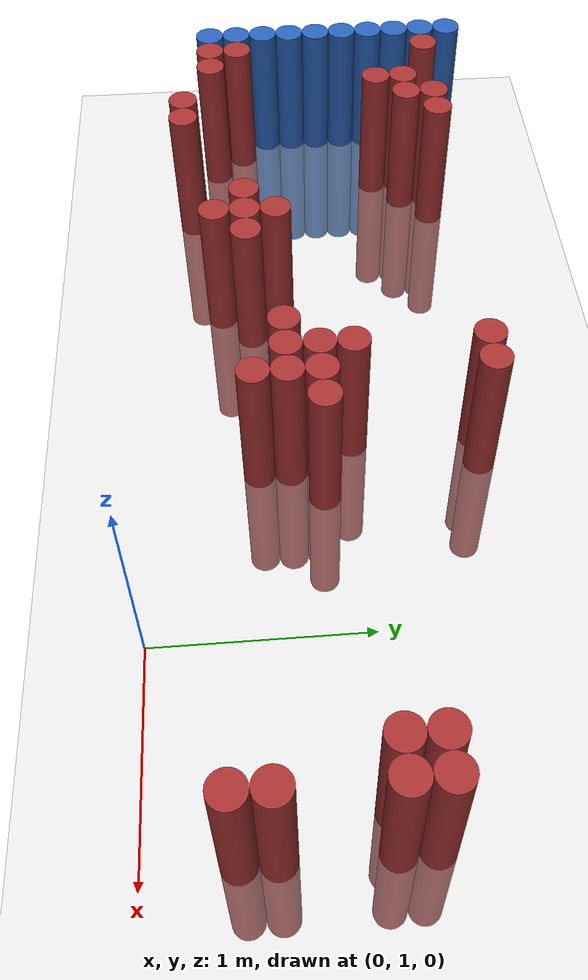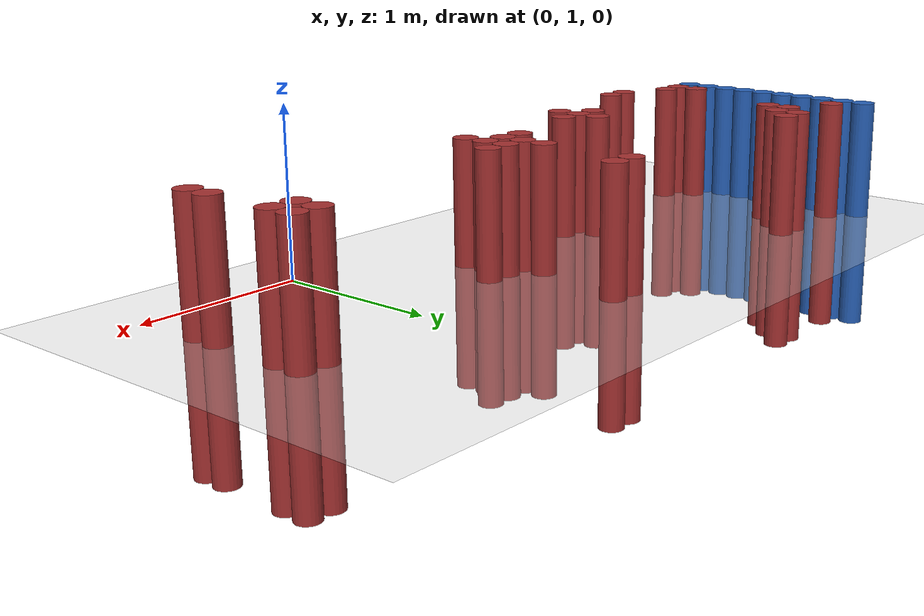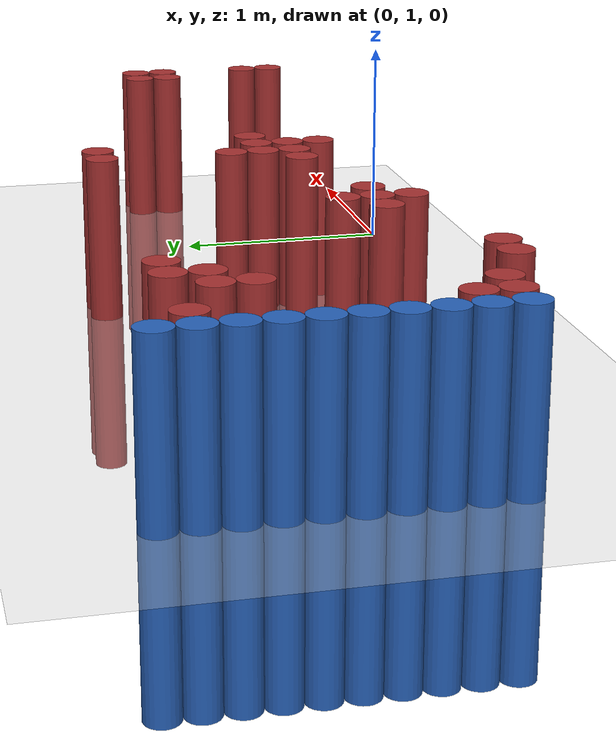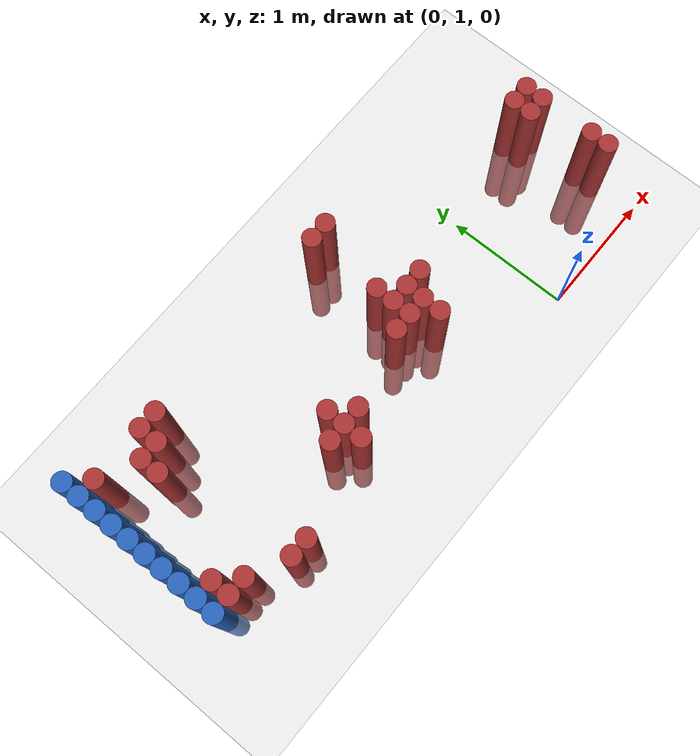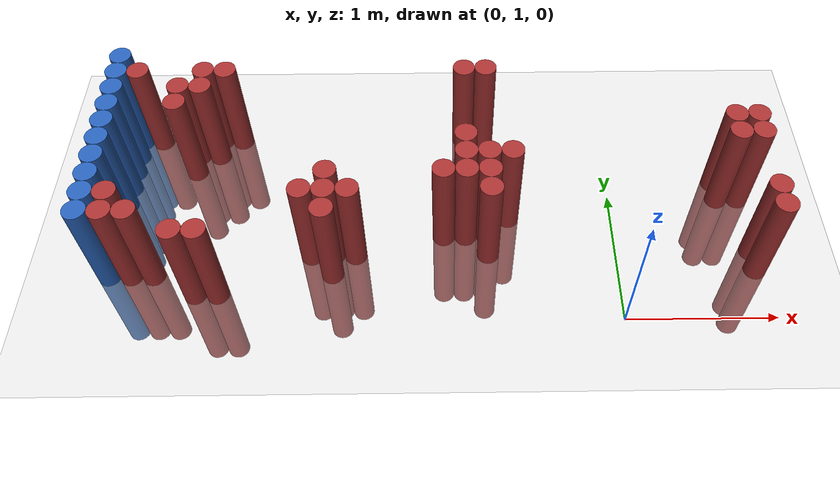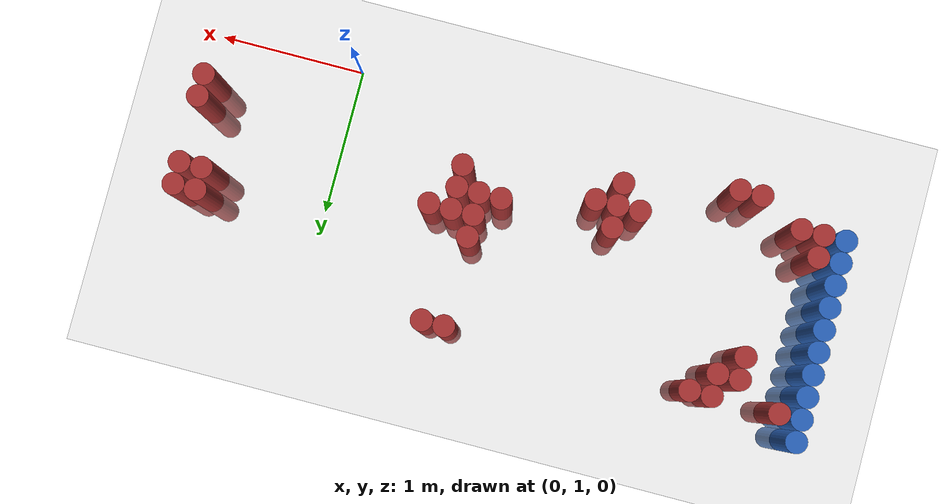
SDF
<sdf version="1.6">
 <world name="default">
  <model name="ground_plane">
   <static>1</static>
   <link name="link">
    <collision name="collision">
     <geometry><plane><normal>0 0 1</normal><size>100 100</size></plane></geometry>
     <surface><friction><ode><mu>100</mu><mu2>50</mu2></ode></friction></surface>
    </collision>
    <visual name="visual">
     <cast_shadows>0</cast_shadows>
     <geometry><plane><normal>0 0 1</normal><size>100 100</size></plane></geometry>
     <material>
      <script><uri>file://media/materials/scripts/gazebo.material</uri><name>Gazebo/Grey</name></script>
     </material>
    </visual>
   </link>
  </model>
  <model name="unit_cylinder_133">
   <static>1</static>
   <pose>-3.425000 1.375000 0.000000 0.000000 0.000000 0.000000</pose>
   <link name="link">
    <inertial>
     <mass>1</mass>
     <inertia><ixx>0.145833</ixx><ixy>0</ixy><ixz>0</ixz><iyy>0.145833</iyy><iyz>0</iyz><izz>0.125</izz></inertia>
    </inertial>
    <collision name="collision">
     <geometry><cylinder><radius>0.075000</radius><length>1.5</length></cylinder></geometry>
    </collision>
    <visual name="visual">
     <geometry><cylinder><radius>0.075000</radius><length>1.5</length></cylinder></geometry>
     <material>
      <ambient>0.152000 0.379000 0.720000 1</ambient>
      <diffuse>0.152000 0.379000 0.720000 1</diffuse>
     </material>
     <material>
      <script><name>Gazebo/Grey</name><uri>file://media/materials/scripts/gazebo.material</uri></script>
     </material>
    </visual>
   </link>
  </model>
  <model name="unit_cylinder_135">
   <static>1</static>
   <pose>-3.425000 1.525000 0.000000 0.000000 0.000000 0.000000</pose>
   <link name="link">
    <inertial>
     <mass>1</mass>
     <inertia><ixx>0.145833</ixx><ixy>0</ixy><ixz>0</ixz><iyy>0.145833</iyy><iyz>0</iyz><izz>0.125</izz></inertia>
    </inertial>
    <collision name="collision">
     <geometry><cylinder><radius>0.075000</radius><length>1.5</length></cylinder></geometry>
    </collision>
    <visual name="visual">
     <geometry><cylinder><radius>0.075000</radius><length>1.5</length></cylinder></geometry>
     <material>
      <ambient>0.152000 0.379000 0.720000 1</ambient>
      <diffuse>0.152000 0.379000 0.720000 1</diffuse>
     </material>
     <material>
      <script><name>Gazebo/Grey</name><uri>file://media/materials/scripts/gazebo.material</uri></script>
     </material>
    </visual>
   </link>
  </model>
  <model name="unit_cylinder_137">
   <static>1</static>
   <pose>-3.425000 1.675000 0.000000 0.000000 0.000000 0.000000</pose>
   <link name="link">
    <inertial>
     <mass>1</mass>
     <inertia><ixx>0.145833</ixx><ixy>0</ixy><ixz>0</ixz><iyy>0.145833</iyy><iyz>0</iyz><izz>0.125</izz></inertia>
    </inertial>
    <collision name="collision">
     <geometry><cylinder><radius>0.075000</radius><length>1.5</length></cylinder></geometry>
    </collision>
    <visual name="visual">
     <geometry><cylinder><radius>0.075000</radius><length>1.5</length></cylinder></geometry>
     <material>
      <ambient>0.152000 0.379000 0.720000 1</ambient>
      <diffuse>0.152000 0.379000 0.720000 1</diffuse>
     </material>
     <material>
      <script><name>Gazebo/Grey</name><uri>file://media/materials/scripts/gazebo.material</uri></script>
     </material>
    </visual>
   </link>
  </model>
  <model name="unit_cylinder_139">
   <static>1</static>
   <pose>-3.425000 1.825000 0.000000 0.000000 0.000000 0.000000</pose>
   <link name="link">
    <inertial>
     <mass>1</mass>
     <inertia><ixx>0.145833</ixx><ixy>0</ixy><ixz>0</ixz><iyy>0.145833</iyy><iyz>0</iyz><izz>0.125</izz></inertia>
    </inertial>
    <collision name="collision">
     <geometry><cylinder><radius>0.075000</radius><length>1.5</length></cylinder></geometry>
    </collision>
    <visual name="visual">
     <geometry><cylinder><radius>0.075000</radius><length>1.5</length></cylinder></geometry>
     <material>
      <ambient>0.152000 0.379000 0.720000 1</ambient>
      <diffuse>0.152000 0.379000 0.720000 1</diffuse>
     </material>
     <material>
      <script><name>Gazebo/Grey</name><uri>file://media/materials/scripts/gazebo.material</uri></script>
     </material>
    </visual>
   </link>
  </model>
  <model name="unit_cylinder_141">
   <static>1</static>
   <pose>-3.425000 1.975000 0.000000 0.000000 0.000000 0.000000</pose>
   <link name="link">
    <inertial>
     <mass>1</mass>
     <inertia><ixx>0.145833</ixx><ixy>0</ixy><ixz>0</ixz><iyy>0.145833</iyy><iyz>0</iyz><izz>0.125</izz></inertia>
    </inertial>
    <collision name="collision">
     <geometry><cylinder><radius>0.075000</radius><length>1.5</length></cylinder></geometry>
    </collision>
    <visual name="visual">
     <geometry><cylinder><radius>0.075000</radius><length>1.5</length></cylinder></geometry>
     <material>
      <ambient>0.152000 0.379000 0.720000 1</ambient>
      <diffuse>0.152000 0.379000 0.720000 1</diffuse>
     </material>
     <material>
      <script><name>Gazebo/Grey</name><uri>file://media/materials/scripts/gazebo.material</uri></script>
     </material>
    </visual>
   </link>
  </model>
  <model name="unit_cylinder_143">
   <static>1</static>
   <pose>-3.425000 2.125000 0.000000 0.000000 0.000000 0.000000</pose>
   <link name="link">
    <inertial>
     <mass>1</mass>
     <inertia><ixx>0.145833</ixx><ixy>0</ixy><ixz>0</ixz><iyy>0.145833</iyy><iyz>0</iyz><izz>0.125</izz></inertia>
    </inertial>
    <collision name="collision">
     <geometry><cylinder><radius>0.075000</radius><length>1.5</length></cylinder></geometry>
    </collision>
    <visual name="visual">
     <geometry><cylinder><radius>0.075000</radius><length>1.5</length></cylinder></geometry>
     <material>
      <ambient>0.152000 0.379000 0.720000 1</ambient>
      <diffuse>0.152000 0.379000 0.720000 1</diffuse>
     </material>
     <material>
      <script><name>Gazebo/Grey</name><uri>file://media/materials/scripts/gazebo.material</uri></script>
     </material>
    </visual>
   </link>
  </model>
  <model name="unit_cylinder_145">
   <static>1</static>
   <pose>-3.425000 2.275000 0.000000 0.000000 0.000000 0.000000</pose>
   <link name="link">
    <inertial>
     <mass>1</mass>
     <inertia><ixx>0.145833</ixx><ixy>0</ixy><ixz>0</ixz><iyy>0.145833</iyy><iyz>0</iyz><izz>0.125</izz></inertia>
    </inertial>
    <collision name="collision">
     <geometry><cylinder><radius>0.075000</radius><length>1.5</length></cylinder></geometry>
    </collision>
    <visual name="visual">
     <geometry><cylinder><radius>0.075000</radius><length>1.5</length></cylinder></geometry>
     <material>
      <ambient>0.152000 0.379000 0.720000 1</ambient>
      <diffuse>0.152000 0.379000 0.720000 1</diffuse>
     </material>
     <material>
      <script><name>Gazebo/Grey</name><uri>file://media/materials/scripts/gazebo.material</uri></script>
     </material>
    </visual>
   </link>
  </model>
  <model name="unit_cylinder_147">
   <static>1</static>
   <pose>-3.425000 2.425000 0.000000 0.000000 0.000000 0.000000</pose>
   <link name="link">
    <inertial>
     <mass>1</mass>
     <inertia><ixx>0.145833</ixx><ixy>0</ixy><ixz>0</ixz><iyy>0.145833</iyy><iyz>0</iyz><izz>0.125</izz></inertia>
    </inertial>
    <collision name="collision">
     <geometry><cylinder><radius>0.075000</radius><length>1.5</length></cylinder></geometry>
    </collision>
    <visual name="visual">
     <geometry><cylinder><radius>0.075000</radius><length>1.5</length></cylinder></geometry>
     <material>
      <ambient>0.152000 0.379000 0.720000 1</ambient>
      <diffuse>0.152000 0.379000 0.720000 1</diffuse>
     </material>
     <material>
      <script><name>Gazebo/Grey</name><uri>file://media/materials/scripts/gazebo.material</uri></script>
     </material>
    </visual>
   </link>
  </model>
  <model name="unit_cylinder_149">
   <static>1</static>
   <pose>-3.425000 2.575000 0.000000 0.000000 0.000000 0.000000</pose>
   <link name="link">
    <inertial>
     <mass>1</mass>
     <inertia><ixx>0.145833</ixx><ixy>0</ixy><ixz>0</ixz><iyy>0.145833</iyy><iyz>0</iyz><izz>0.125</izz></inertia>
    </inertial>
    <collision name="collision">
     <geometry><cylinder><radius>0.075000</radius><length>1.5</length></cylinder></geometry>
    </collision>
    <visual name="visual">
     <geometry><cylinder><radius>0.075000</radius><length>1.5</length></cylinder></geometry>
     <material>
      <ambient>0.152000 0.379000 0.720000 1</ambient>
      <diffuse>0.152000 0.379000 0.720000 1</diffuse>
     </material>
     <material>
      <script><name>Gazebo/Grey</name><uri>file://media/materials/scripts/gazebo.material</uri></script>
     </material>
    </visual>
   </link>
  </model>
  <model name="unit_cylinder_151">
   <static>1</static>
   <pose>-3.425000 2.725000 0.000000 0.000000 0.000000 0.000000</pose>
   <link name="link">
    <inertial>
     <mass>1</mass>
     <inertia><ixx>0.145833</ixx><ixy>0</ixy><ixz>0</ixz><iyy>0.145833</iyy><iyz>0</iyz><izz>0.125</izz></inertia>
    </inertial>
    <collision name="collision">
     <geometry><cylinder><radius>0.075000</radius><length>1.5</length></cylinder></geometry>
    </collision>
    <visual name="visual">
     <geometry><cylinder><radius>0.075000</radius><length>1.5</length></cylinder></geometry>
     <material>
      <ambient>0.152000 0.379000 0.720000 1</ambient>
      <diffuse>0.152000 0.379000 0.720000 1</diffuse>
     </material>
     <material>
      <script><name>Gazebo/Grey</name><uri>file://media/materials/scripts/gazebo.material</uri></script>
     </material>
    </visual>
   </link>
  </model>
  <model name="unit_cylinder_230">
   <static>1</static>
   <pose>-3.425000 1.375000 0.000000 0.000000 0.000000 0.000000</pose>
   <link name="link">
    <inertial>
     <mass>1</mass>
     <inertia><ixx>0.145833</ixx><ixy>0</ixy><ixz>0</ixz><iyy>0.145833</iyy><iyz>0</iyz><izz>0.125</izz></inertia>
    </inertial>
    <collision name="collision">
     <geometry><cylinder><radius>0.075000</radius><length>1.5</length></cylinder></geometry>
    </collision>
    <visual name="visual">
     <geometry><cylinder><radius>0.075000</radius><length>1.5</length></cylinder></geometry>
     <material>
      <ambient>0.152000 0.379000 0.720000 1</ambient>
      <diffuse>0.152000 0.379000 0.720000 1</diffuse>
     </material>
     <material>
      <script><name>Gazebo/Grey</name><uri>file://media/materials/scripts/gazebo.material</uri></script>
     </material>
    </visual>
   </link>
  </model>
  <model name="unit_cylinder_231">
   <static>1</static>
   <pose>-3.425000 1.525000 0.000000 0.000000 0.000000 0.000000</pose>
   <link name="link">
    <inertial>
     <mass>1</mass>
     <inertia><ixx>0.145833</ixx><ixy>0</ixy><ixz>0</ixz><iyy>0.145833</iyy><iyz>0</iyz><izz>0.125</izz></inertia>
    </inertial>
    <collision name="collision">
     <geometry><cylinder><radius>0.075000</radius><length>1.5</length></cylinder></geometry>
    </collision>
    <visual name="visual">
     <geometry><cylinder><radius>0.075000</radius><length>1.5</length></cylinder></geometry>
     <material>
      <ambient>0.152000 0.379000 0.720000 1</ambient>
      <diffuse>0.152000 0.379000 0.720000 1</diffuse>
     </material>
     <material>
      <script><name>Gazebo/Grey</name><uri>file://media/materials/scripts/gazebo.material</uri></script>
     </material>
    </visual>
   </link>
  </model>
  <model name="unit_cylinder_232">
   <static>1</static>
   <pose>-3.425000 1.675000 0.000000 0.000000 0.000000 0.000000</pose>
   <link name="link">
    <inertial>
     <mass>1</mass>
     <inertia><ixx>0.145833</ixx><ixy>0</ixy><ixz>0</ixz><iyy>0.145833</iyy><iyz>0</iyz><izz>0.125</izz></inertia>
    </inertial>
    <collision name="collision">
     <geometry><cylinder><radius>0.075000</radius><length>1.5</length></cylinder></geometry>
    </collision>
    <visual name="visual">
     <geometry><cylinder><radius>0.075000</radius><length>1.5</length></cylinder></geometry>
     <material>
      <ambient>0.152000 0.379000 0.720000 1</ambient>
      <diffuse>0.152000 0.379000 0.720000 1</diffuse>
     </material>
     <material>
      <script><name>Gazebo/Grey</name><uri>file://media/materials/scripts/gazebo.material</uri></script>
     </material>
    </visual>
   </link>
  </model>
  <model name="unit_cylinder_233">
   <static>1</static>
   <pose>-3.425000 1.825000 0.000000 0.000000 0.000000 0.000000</pose>
   <link name="link">
    <inertial>
     <mass>1</mass>
     <inertia><ixx>0.145833</ixx><ixy>0</ixy><ixz>0</ixz><iyy>0.145833</iyy><iyz>0</iyz><izz>0.125</izz></inertia>
    </inertial>
    <collision name="collision">
     <geometry><cylinder><radius>0.075000</radius><length>1.5</length></cylinder></geometry>
    </collision>
    <visual name="visual">
     <geometry><cylinder><radius>0.075000</radius><length>1.5</length></cylinder></geometry>
     <material>
      <ambient>0.152000 0.379000 0.720000 1</ambient>
      <diffuse>0.152000 0.379000 0.720000 1</diffuse>
     </material>
     <material>
      <script><name>Gazebo/Grey</name><uri>file://media/materials/scripts/gazebo.material</uri></script>
     </material>
    </visual>
   </link>
  </model>
  <model name="unit_cylinder_234">
   <static>1</static>
   <pose>-3.425000 1.975000 0.000000 0.000000 0.000000 0.000000</pose>
   <link name="link">
    <inertial>
     <mass>1</mass>
     <inertia><ixx>0.145833</ixx><ixy>0</ixy><ixz>0</ixz><iyy>0.145833</iyy><iyz>0</iyz><izz>0.125</izz></inertia>
    </inertial>
    <collision name="collision">
     <geometry><cylinder><radius>0.075000</radius><length>1.5</length></cylinder></geometry>
    </collision>
    <visual name="visual">
     <geometry><cylinder><radius>0.075000</radius><length>1.5</length></cylinder></geometry>
     <material>
      <ambient>0.152000 0.379000 0.720000 1</ambient>
      <diffuse>0.152000 0.379000 0.720000 1</diffuse>
     </material>
     <material>
      <script><name>Gazebo/Grey</name><uri>file://media/materials/scripts/gazebo.material</uri></script>
     </material>
    </visual>
   </link>
  </model>
  <model name="unit_cylinder_235">
   <static>1</static>
   <pose>-3.425000 2.125000 0.000000 0.000000 0.000000 0.000000</pose>
   <link name="link">
    <inertial>
     <mass>1</mass>
     <inertia><ixx>0.145833</ixx><ixy>0</ixy><ixz>0</ixz><iyy>0.145833</iyy><iyz>0</iyz><izz>0.125</izz></inertia>
    </inertial>
    <collision name="collision">
     <geometry><cylinder><radius>0.075000</radius><length>1.5</length></cylinder></geometry>
    </collision>
    <visual name="visual">
     <geometry><cylinder><radius>0.075000</radius><length>1.5</length></cylinder></geometry>
     <material>
      <ambient>0.152000 0.379000 0.720000 1</ambient>
      <diffuse>0.152000 0.379000 0.720000 1</diffuse>
     </material>
     <material>
      <script><name>Gazebo/Grey</name><uri>file://media/materials/scripts/gazebo.material</uri></script>
     </material>
    </visual>
   </link>
  </model>
  <model name="unit_cylinder_236">
   <static>1</static>
   <pose>-3.425000 2.275000 0.000000 0.000000 0.000000 0.000000</pose>
   <link name="link">
    <inertial>
     <mass>1</mass>
     <inertia><ixx>0.145833</ixx><ixy>0</ixy><ixz>0</ixz><iyy>0.145833</iyy><iyz>0</iyz><izz>0.125</izz></inertia>
    </inertial>
    <collision name="collision">
     <geometry><cylinder><radius>0.075000</radius><length>1.5</length></cylinder></geometry>
    </collision>
    <visual name="visual">
     <geometry><cylinder><radius>0.075000</radius><length>1.5</length></cylinder></geometry>
     <material>
      <ambient>0.152000 0.379000 0.720000 1</ambient>
      <diffuse>0.152000 0.379000 0.720000 1</diffuse>
     </material>
     <material>
      <script><name>Gazebo/Grey</name><uri>file://media/materials/scripts/gazebo.material</uri></script>
     </material>
    </visual>
   </link>
  </model>
  <model name="unit_cylinder_237">
   <static>1</static>
   <pose>-3.425000 2.425000 0.000000 0.000000 0.000000 0.000000</pose>
   <link name="link">
    <inertial>
     <mass>1</mass>
     <inertia><ixx>0.145833</ixx><ixy>0</ixy><ixz>0</ixz><iyy>0.145833</iyy><iyz>0</iyz><izz>0.125</izz></inertia>
    </inertial>
    <collision name="collision">
     <geometry><cylinder><radius>0.075000</radius><length>1.5</length></cylinder></geometry>
    </collision>
    <visual name="visual">
     <geometry><cylinder><radius>0.075000</radius><length>1.5</length></cylinder></geometry>
     <material>
      <ambient>0.152000 0.379000 0.720000 1</ambient>
      <diffuse>0.152000 0.379000 0.720000 1</diffuse>
     </material>
     <material>
      <script><name>Gazebo/Grey</name><uri>file://media/materials/scripts/gazebo.material</uri></script>
     </material>
    </visual>
   </link>
  </model>
  <model name="unit_cylinder_238">
   <static>1</static>
   <pose>-3.425000 2.575000 0.000000 0.000000 0.000000 0.000000</pose>
   <link name="link">
    <inertial>
     <mass>1</mass>
     <inertia><ixx>0.145833</ixx><ixy>0</ixy><ixz>0</ixz><iyy>0.145833</iyy><iyz>0</iyz><izz>0.125</izz></inertia>
    </inertial>
    <collision name="collision">
     <geometry><cylinder><radius>0.075000</radius><length>1.5</length></cylinder></geometry>
    </collision>
    <visual name="visual">
     <geometry><cylinder><radius>0.075000</radius><length>1.5</length></cylinder></geometry>
     <material>
      <ambient>0.152000 0.379000 0.720000 1</ambient>
      <diffuse>0.152000 0.379000 0.720000 1</diffuse>
     </material>
     <material>
      <script><name>Gazebo/Grey</name><uri>file://media/materials/scripts/gazebo.material</uri></script>
     </material>
    </visual>
   </link>
  </model>
  <model name="unit_cylinder_265">
   <static>1</static>
   <pose>-3.275000 1.375000 0.000000 0.000000 0.000000 0.000000</pose>
   <link name="link">
    <inertial>
     <mass>1</mass>
     <inertia><ixx>0.145833</ixx><ixy>0</ixy><ixz>0</ixz><iyy>0.145833</iyy><iyz>0</iyz><izz>0.125</izz></inertia>
    </inertial>
    <collision name="collision">
     <geometry><cylinder><radius>0.075000</radius><length>1.5</length></cylinder></geometry>
    </collision>
    <visual name="visual">
     <geometry><cylinder><radius>0.075000</radius><length>1.5</length></cylinder></geometry>
     <material>
      <ambient>0.648000 0.192000 0.192000 1</ambient>
      <diffuse>0.648000 0.192000 0.192000 1</diffuse>
     </material>
     <material>
      <script><name>Gazebo/Grey</name><uri>file://media/materials/scripts/gazebo.material</uri></script>
     </material>
    </visual>
   </link>
  </model>
  <model name="unit_cylinder_266">
   <static>1</static>
   <pose>-3.275000 1.525000 0.000000 0.000000 0.000000 0.000000</pose>
   <link name="link">
    <inertial>
     <mass>1</mass>
     <inertia><ixx>0.145833</ixx><ixy>0</ixy><ixz>0</ixz><iyy>0.145833</iyy><iyz>0</iyz><izz>0.125</izz></inertia>
    </inertial>
    <collision name="collision">
     <geometry><cylinder><radius>0.075000</radius><length>1.5</length></cylinder></geometry>
    </collision>
    <visual name="visual">
     <geometry><cylinder><radius>0.075000</radius><length>1.5</length></cylinder></geometry>
     <material>
      <ambient>0.648000 0.192000 0.192000 1</ambient>
      <diffuse>0.648000 0.192000 0.192000 1</diffuse>
     </material>
     <material>
      <script><name>Gazebo/Grey</name><uri>file://media/materials/scripts/gazebo.material</uri></script>
     </material>
    </visual>
   </link>
  </model>
  <model name="unit_cylinder_267">
   <static>1</static>
   <pose>-3.275000 2.575000 0.000000 0.000000 0.000000 0.000000</pose>
   <link name="link">
    <inertial>
     <mass>1</mass>
     <inertia><ixx>0.145833</ixx><ixy>0</ixy><ixz>0</ixz><iyy>0.145833</iyy><iyz>0</iyz><izz>0.125</izz></inertia>
    </inertial>
    <collision name="collision">
     <geometry><cylinder><radius>0.075000</radius><length>1.5</length></cylinder></geometry>
    </collision>
    <visual name="visual">
     <geometry><cylinder><radius>0.075000</radius><length>1.5</length></cylinder></geometry>
     <material>
      <ambient>0.648000 0.192000 0.192000 1</ambient>
      <diffuse>0.648000 0.192000 0.192000 1</diffuse>
     </material>
     <material>
      <script><name>Gazebo/Grey</name><uri>file://media/materials/scripts/gazebo.material</uri></script>
     </material>
    </visual>
   </link>
  </model>
  <model name="unit_cylinder_283">
   <static>1</static>
   <pose>-3.125000 1.375000 0.000000 0.000000 0.000000 0.000000</pose>
   <link name="link">
    <inertial>
     <mass>1</mass>
     <inertia><ixx>0.145833</ixx><ixy>0</ixy><ixz>0</ixz><iyy>0.145833</iyy><iyz>0</iyz><izz>0.125</izz></inertia>
    </inertial>
    <collision name="collision">
     <geometry><cylinder><radius>0.075000</radius><length>1.5</length></cylinder></geometry>
    </collision>
    <visual name="visual">
     <geometry><cylinder><radius>0.075000</radius><length>1.5</length></cylinder></geometry>
     <material>
      <ambient>0.648000 0.192000 0.192000 1</ambient>
      <diffuse>0.648000 0.192000 0.192000 1</diffuse>
     </material>
     <material>
      <script><name>Gazebo/Grey</name><uri>file://media/materials/scripts/gazebo.material</uri></script>
     </material>
    </visual>
   </link>
  </model>
  <model name="unit_cylinder_293">
   <static>1</static>
   <pose>-2.975000 2.275000 0.000000 0.000000 0.000000 0.000000</pose>
   <link name="link">
    <inertial>
     <mass>1</mass>
     <inertia><ixx>0.145833</ixx><ixy>0</ixy><ixz>0</ixz><iyy>0.145833</iyy><iyz>0</iyz><izz>0.125</izz></inertia>
    </inertial>
    <collision name="collision">
     <geometry><cylinder><radius>0.075000</radius><length>1.5</length></cylinder></geometry>
    </collision>
    <visual name="visual">
     <geometry><cylinder><radius>0.075000</radius><length>1.5</length></cylinder></geometry>
     <material>
      <ambient>0.648000 0.192000 0.192000 1</ambient>
      <diffuse>0.648000 0.192000 0.192000 1</diffuse>
     </material>
     <material>
      <script><name>Gazebo/Grey</name><uri>file://media/materials/scripts/gazebo.material</uri></script>
     </material>
    </visual>
   </link>
  </model>
  <model name="unit_cylinder_294">
   <static>1</static>
   <pose>-2.975000 2.425000 0.000000 0.000000 0.000000 0.000000</pose>
   <link name="link">
    <inertial>
     <mass>1</mass>
     <inertia><ixx>0.145833</ixx><ixy>0</ixy><ixz>0</ixz><iyy>0.145833</iyy><iyz>0</iyz><izz>0.125</izz></inertia>
    </inertial>
    <collision name="collision">
     <geometry><cylinder><radius>0.075000</radius><length>1.5</length></cylinder></geometry>
    </collision>
    <visual name="visual">
     <geometry><cylinder><radius>0.075000</radius><length>1.5</length></cylinder></geometry>
     <material>
      <ambient>0.648000 0.192000 0.192000 1</ambient>
      <diffuse>0.648000 0.192000 0.192000 1</diffuse>
     </material>
     <material>
      <script><name>Gazebo/Grey</name><uri>file://media/materials/scripts/gazebo.material</uri></script>
     </material>
    </visual>
   </link>
  </model>
  <model name="unit_cylinder_302">
   <static>1</static>
   <pose>-2.825000 1.225000 0.000000 0.000000 0.000000 0.000000</pose>
   <link name="link">
    <inertial>
     <mass>1</mass>
     <inertia><ixx>0.145833</ixx><ixy>0</ixy><ixz>0</ixz><iyy>0.145833</iyy><iyz>0</iyz><izz>0.125</izz></inertia>
    </inertial>
    <collision name="collision">
     <geometry><cylinder><radius>0.075000</radius><length>1.5</length></cylinder></geometry>
    </collision>
    <visual name="visual">
     <geometry><cylinder><radius>0.075000</radius><length>1.5</length></cylinder></geometry>
     <material>
      <ambient>0.648000 0.192000 0.192000 1</ambient>
      <diffuse>0.648000 0.192000 0.192000 1</diffuse>
     </material>
     <material>
      <script><name>Gazebo/Grey</name><uri>file://media/materials/scripts/gazebo.material</uri></script>
     </material>
    </visual>
   </link>
  </model>
  <model name="unit_cylinder_303">
   <static>1</static>
   <pose>-2.825000 2.425000 0.000000 0.000000 0.000000 0.000000</pose>
   <link name="link">
    <inertial>
     <mass>1</mass>
     <inertia><ixx>0.145833</ixx><ixy>0</ixy><ixz>0</ixz><iyy>0.145833</iyy><iyz>0</iyz><izz>0.125</izz></inertia>
    </inertial>
    <collision name="collision">
     <geometry><cylinder><radius>0.075000</radius><length>1.5</length></cylinder></geometry>
    </collision>
    <visual name="visual">
     <geometry><cylinder><radius>0.075000</radius><length>1.5</length></cylinder></geometry>
     <material>
      <ambient>0.648000 0.192000 0.192000 1</ambient>
      <diffuse>0.648000 0.192000 0.192000 1</diffuse>
     </material>
     <material>
      <script><name>Gazebo/Grey</name><uri>file://media/materials/scripts/gazebo.material</uri></script>
     </material>
    </visual>
   </link>
  </model>
  <model name="unit_cylinder_304">
   <static>1</static>
   <pose>-2.825000 2.575000 0.000000 0.000000 0.000000 0.000000</pose>
   <link name="link">
    <inertial>
     <mass>1</mass>
     <inertia><ixx>0.145833</ixx><ixy>0</ixy><ixz>0</ixz><iyy>0.145833</iyy><iyz>0</iyz><izz>0.125</izz></inertia>
    </inertial>
    <collision name="collision">
     <geometry><cylinder><radius>0.075000</radius><length>1.5</length></cylinder></geometry>
    </collision>
    <visual name="visual">
     <geometry><cylinder><radius>0.075000</radius><length>1.5</length></cylinder></geometry>
     <material>
      <ambient>0.648000 0.192000 0.192000 1</ambient>
      <diffuse>0.648000 0.192000 0.192000 1</diffuse>
     </material>
     <material>
      <script><name>Gazebo/Grey</name><uri>file://media/materials/scripts/gazebo.material</uri></script>
     </material>
    </visual>
   </link>
  </model>
  <model name="unit_cylinder_310">
   <static>1</static>
   <pose>-2.675000 1.225000 0.000000 0.000000 0.000000 0.000000</pose>
   <link name="link">
    <inertial>
     <mass>1</mass>
     <inertia><ixx>0.145833</ixx><ixy>0</ixy><ixz>0</ixz><iyy>0.145833</iyy><iyz>0</iyz><izz>0.125</izz></inertia>
    </inertial>
    <collision name="collision">
     <geometry><cylinder><radius>0.075000</radius><length>1.5</length></cylinder></geometry>
    </collision>
    <visual name="visual">
     <geometry><cylinder><radius>0.075000</radius><length>1.5</length></cylinder></geometry>
     <material>
      <ambient>0.648000 0.192000 0.192000 1</ambient>
      <diffuse>0.648000 0.192000 0.192000 1</diffuse>
     </material>
     <material>
      <script><name>Gazebo/Grey</name><uri>file://media/materials/scripts/gazebo.material</uri></script>
     </material>
    </visual>
   </link>
  </model>
  <model name="unit_cylinder_311">
   <static>1</static>
   <pose>-2.675000 2.575000 0.000000 0.000000 0.000000 0.000000</pose>
   <link name="link">
    <inertial>
     <mass>1</mass>
     <inertia><ixx>0.145833</ixx><ixy>0</ixy><ixz>0</ixz><iyy>0.145833</iyy><iyz>0</iyz><izz>0.125</izz></inertia>
    </inertial>
    <collision name="collision">
     <geometry><cylinder><radius>0.075000</radius><length>1.5</length></cylinder></geometry>
    </collision>
    <visual name="visual">
     <geometry><cylinder><radius>0.075000</radius><length>1.5</length></cylinder></geometry>
     <material>
      <ambient>0.648000 0.192000 0.192000 1</ambient>
      <diffuse>0.648000 0.192000 0.192000 1</diffuse>
     </material>
     <material>
      <script><name>Gazebo/Grey</name><uri>file://media/materials/scripts/gazebo.material</uri></script>
     </material>
    </visual>
   </link>
  </model>
  <model name="unit_cylinder_333">
   <static>1</static>
   <pose>-2.075000 1.525000 0.000000 0.000000 0.000000 0.000000</pose>
   <link name="link">
    <inertial>
     <mass>1</mass>
     <inertia><ixx>0.145833</ixx><ixy>0</ixy><ixz>0</ixz><iyy>0.145833</iyy><iyz>0</iyz><izz>0.125</izz></inertia>
    </inertial>
    <collision name="collision">
     <geometry><cylinder><radius>0.075000</radius><length>1.5</length></cylinder></geometry>
    </collision>
    <visual name="visual">
     <geometry><cylinder><radius>0.075000</radius><length>1.5</length></cylinder></geometry>
     <material>
      <ambient>0.648000 0.192000 0.192000 1</ambient>
      <diffuse>0.648000 0.192000 0.192000 1</diffuse>
     </material>
     <material>
      <script><name>Gazebo/Grey</name><uri>file://media/materials/scripts/gazebo.material</uri></script>
     </material>
    </visual>
   </link>
  </model>
  <model name="unit_cylinder_340">
   <static>1</static>
   <pose>-1.925000 1.375000 0.000000 0.000000 0.000000 0.000000</pose>
   <link name="link">
    <inertial>
     <mass>1</mass>
     <inertia><ixx>0.145833</ixx><ixy>0</ixy><ixz>0</ixz><iyy>0.145833</iyy><iyz>0</iyz><izz>0.125</izz></inertia>
    </inertial>
    <collision name="collision">
     <geometry><cylinder><radius>0.075000</radius><length>1.5</length></cylinder></geometry>
    </collision>
    <visual name="visual">
     <geometry><cylinder><radius>0.075000</radius><length>1.5</length></cylinder></geometry>
     <material>
      <ambient>0.648000 0.192000 0.192000 1</ambient>
      <diffuse>0.648000 0.192000 0.192000 1</diffuse>
     </material>
     <material>
      <script><name>Gazebo/Grey</name><uri>file://media/materials/scripts/gazebo.material</uri></script>
     </material>
    </visual>
   </link>
  </model>
  <model name="unit_cylinder_341">
   <static>1</static>
   <pose>-1.925000 1.525000 0.000000 0.000000 0.000000 0.000000</pose>
   <link name="link">
    <inertial>
     <mass>1</mass>
     <inertia><ixx>0.145833</ixx><ixy>0</ixy><ixz>0</ixz><iyy>0.145833</iyy><iyz>0</iyz><izz>0.125</izz></inertia>
    </inertial>
    <collision name="collision">
     <geometry><cylinder><radius>0.075000</radius><length>1.5</length></cylinder></geometry>
    </collision>
    <visual name="visual">
     <geometry><cylinder><radius>0.075000</radius><length>1.5</length></cylinder></geometry>
     <material>
      <ambient>0.648000 0.192000 0.192000 1</ambient>
      <diffuse>0.648000 0.192000 0.192000 1</diffuse>
     </material>
     <material>
      <script><name>Gazebo/Grey</name><uri>file://media/materials/scripts/gazebo.material</uri></script>
     </material>
    </visual>
   </link>
  </model>
  <model name="unit_cylinder_342">
   <static>1</static>
   <pose>-1.925000 1.675000 0.000000 0.000000 0.000000 0.000000</pose>
   <link name="link">
    <inertial>
     <mass>1</mass>
     <inertia><ixx>0.145833</ixx><ixy>0</ixy><ixz>0</ixz><iyy>0.145833</iyy><iyz>0</iyz><izz>0.125</izz></inertia>
    </inertial>
    <collision name="collision">
     <geometry><cylinder><radius>0.075000</radius><length>1.5</length></cylinder></geometry>
    </collision>
    <visual name="visual">
     <geometry><cylinder><radius>0.075000</radius><length>1.5</length></cylinder></geometry>
     <material>
      <ambient>0.648000 0.192000 0.192000 1</ambient>
      <diffuse>0.648000 0.192000 0.192000 1</diffuse>
     </material>
     <material>
      <script><name>Gazebo/Grey</name><uri>file://media/materials/scripts/gazebo.material</uri></script>
     </material>
    </visual>
   </link>
  </model>
  <model name="unit_cylinder_351">
   <static>1</static>
   <pose>-1.775000 1.525000 0.000000 0.000000 0.000000 0.000000</pose>
   <link name="link">
    <inertial>
     <mass>1</mass>
     <inertia><ixx>0.145833</ixx><ixy>0</ixy><ixz>0</ixz><iyy>0.145833</iyy><iyz>0</iyz><izz>0.125</izz></inertia>
    </inertial>
    <collision name="collision">
     <geometry><cylinder><radius>0.075000</radius><length>1.5</length></cylinder></geometry>
    </collision>
    <visual name="visual">
     <geometry><cylinder><radius>0.075000</radius><length>1.5</length></cylinder></geometry>
     <material>
      <ambient>0.648000 0.192000 0.192000 1</ambient>
      <diffuse>0.648000 0.192000 0.192000 1</diffuse>
     </material>
     <material>
      <script><name>Gazebo/Grey</name><uri>file://media/materials/scripts/gazebo.material</uri></script>
     </material>
    </visual>
   </link>
  </model>
  <model name="unit_cylinder_365">
   <static>1</static>
   <pose>-1.175000 1.675000 0.000000 0.000000 0.000000 0.000000</pose>
   <link name="link">
    <inertial>
     <mass>1</mass>
     <inertia><ixx>0.145833</ixx><ixy>0</ixy><ixz>0</ixz><iyy>0.145833</iyy><iyz>0</iyz><izz>0.125</izz></inertia>
    </inertial>
    <collision name="collision">
     <geometry><cylinder><radius>0.075000</radius><length>1.5</length></cylinder></geometry>
    </collision>
    <visual name="visual">
     <geometry><cylinder><radius>0.075000</radius><length>1.5</length></cylinder></geometry>
     <material>
      <ambient>0.648000 0.192000 0.192000 1</ambient>
      <diffuse>0.648000 0.192000 0.192000 1</diffuse>
     </material>
     <material>
      <script><name>Gazebo/Grey</name><uri>file://media/materials/scripts/gazebo.material</uri></script>
     </material>
    </visual>
   </link>
  </model>
  <model name="unit_cylinder_368">
   <static>1</static>
   <pose>-1.025000 1.675000 0.000000 0.000000 0.000000 0.000000</pose>
   <link name="link">
    <inertial>
     <mass>1</mass>
     <inertia><ixx>0.145833</ixx><ixy>0</ixy><ixz>0</ixz><iyy>0.145833</iyy><iyz>0</iyz><izz>0.125</izz></inertia>
    </inertial>
    <collision name="collision">
     <geometry><cylinder><radius>0.075000</radius><length>1.5</length></cylinder></geometry>
    </collision>
    <visual name="visual">
     <geometry><cylinder><radius>0.075000</radius><length>1.5</length></cylinder></geometry>
     <material>
      <ambient>0.648000 0.192000 0.192000 1</ambient>
      <diffuse>0.648000 0.192000 0.192000 1</diffuse>
     </material>
     <material>
      <script><name>Gazebo/Grey</name><uri>file://media/materials/scripts/gazebo.material</uri></script>
     </material>
    </visual>
   </link>
  </model>
  <model name="unit_cylinder_369">
   <static>1</static>
   <pose>-1.025000 1.825000 0.000000 0.000000 0.000000 0.000000</pose>
   <link name="link">
    <inertial>
     <mass>1</mass>
     <inertia><ixx>0.145833</ixx><ixy>0</ixy><ixz>0</ixz><iyy>0.145833</iyy><iyz>0</iyz><izz>0.125</izz></inertia>
    </inertial>
    <collision name="collision">
     <geometry><cylinder><radius>0.075000</radius><length>1.5</length></cylinder></geometry>
    </collision>
    <visual name="visual">
     <geometry><cylinder><radius>0.075000</radius><length>1.5</length></cylinder></geometry>
     <material>
      <ambient>0.648000 0.192000 0.192000 1</ambient>
      <diffuse>0.648000 0.192000 0.192000 1</diffuse>
     </material>
     <material>
      <script><name>Gazebo/Grey</name><uri>file://media/materials/scripts/gazebo.material</uri></script>
     </material>
    </visual>
   </link>
  </model>
  <model name="unit_cylinder_370">
   <static>1</static>
   <pose>-1.025000 1.975000 0.000000 0.000000 0.000000 0.000000</pose>
   <link name="link">
    <inertial>
     <mass>1</mass>
     <inertia><ixx>0.145833</ixx><ixy>0</ixy><ixz>0</ixz><iyy>0.145833</iyy><iyz>0</iyz><izz>0.125</izz></inertia>
    </inertial>
    <collision name="collision">
     <geometry><cylinder><radius>0.075000</radius><length>1.5</length></cylinder></geometry>
    </collision>
    <visual name="visual">
     <geometry><cylinder><radius>0.075000</radius><length>1.5</length></cylinder></geometry>
     <material>
      <ambient>0.648000 0.192000 0.192000 1</ambient>
      <diffuse>0.648000 0.192000 0.192000 1</diffuse>
     </material>
     <material>
      <script><name>Gazebo/Grey</name><uri>file://media/materials/scripts/gazebo.material</uri></script>
     </material>
    </visual>
   </link>
  </model>
  <model name="unit_cylinder_371">
   <static>1</static>
   <pose>-1.025000 2.575000 0.000000 0.000000 0.000000 0.000000</pose>
   <link name="link">
    <inertial>
     <mass>1</mass>
     <inertia><ixx>0.145833</ixx><ixy>0</ixy><ixz>0</ixz><iyy>0.145833</iyy><iyz>0</iyz><izz>0.125</izz></inertia>
    </inertial>
    <collision name="collision">
     <geometry><cylinder><radius>0.075000</radius><length>1.5</length></cylinder></geometry>
    </collision>
    <visual name="visual">
     <geometry><cylinder><radius>0.075000</radius><length>1.5</length></cylinder></geometry>
     <material>
      <ambient>0.648000 0.192000 0.192000 1</ambient>
      <diffuse>0.648000 0.192000 0.192000 1</diffuse>
     </material>
     <material>
      <script><name>Gazebo/Grey</name><uri>file://media/materials/scripts/gazebo.material</uri></script>
     </material>
    </visual>
   </link>
  </model>
  <model name="unit_cylinder_376">
   <static>1</static>
   <pose>-0.875000 1.525000 0.000000 0.000000 0.000000 0.000000</pose>
   <link name="link">
    <inertial>
     <mass>1</mass>
     <inertia><ixx>0.145833</ixx><ixy>0</ixy><ixz>0</ixz><iyy>0.145833</iyy><iyz>0</iyz><izz>0.125</izz></inertia>
    </inertial>
    <collision name="collision">
     <geometry><cylinder><radius>0.075000</radius><length>1.5</length></cylinder></geometry>
    </collision>
    <visual name="visual">
     <geometry><cylinder><radius>0.075000</radius><length>1.5</length></cylinder></geometry>
     <material>
      <ambient>0.648000 0.192000 0.192000 1</ambient>
      <diffuse>0.648000 0.192000 0.192000 1</diffuse>
     </material>
     <material>
      <script><name>Gazebo/Grey</name><uri>file://media/materials/scripts/gazebo.material</uri></script>
     </material>
    </visual>
   </link>
  </model>
  <model name="unit_cylinder_377">
   <static>1</static>
   <pose>-0.875000 1.675000 0.000000 0.000000 0.000000 0.000000</pose>
   <link name="link">
    <inertial>
     <mass>1</mass>
     <inertia><ixx>0.145833</ixx><ixy>0</ixy><ixz>0</ixz><iyy>0.145833</iyy><iyz>0</iyz><izz>0.125</izz></inertia>
    </inertial>
    <collision name="collision">
     <geometry><cylinder><radius>0.075000</radius><length>1.5</length></cylinder></geometry>
    </collision>
    <visual name="visual">
     <geometry><cylinder><radius>0.075000</radius><length>1.5</length></cylinder></geometry>
     <material>
      <ambient>0.648000 0.192000 0.192000 1</ambient>
      <diffuse>0.648000 0.192000 0.192000 1</diffuse>
     </material>
     <material>
      <script><name>Gazebo/Grey</name><uri>file://media/materials/scripts/gazebo.material</uri></script>
     </material>
    </visual>
   </link>
  </model>
  <model name="unit_cylinder_378">
   <static>1</static>
   <pose>-0.875000 1.825000 0.000000 0.000000 0.000000 0.000000</pose>
   <link name="link">
    <inertial>
     <mass>1</mass>
     <inertia><ixx>0.145833</ixx><ixy>0</ixy><ixz>0</ixz><iyy>0.145833</iyy><iyz>0</iyz><izz>0.125</izz></inertia>
    </inertial>
    <collision name="collision">
     <geometry><cylinder><radius>0.075000</radius><length>1.5</length></cylinder></geometry>
    </collision>
    <visual name="visual">
     <geometry><cylinder><radius>0.075000</radius><length>1.5</length></cylinder></geometry>
     <material>
      <ambient>0.648000 0.192000 0.192000 1</ambient>
      <diffuse>0.648000 0.192000 0.192000 1</diffuse>
     </material>
     <material>
      <script><name>Gazebo/Grey</name><uri>file://media/materials/scripts/gazebo.material</uri></script>
     </material>
    </visual>
   </link>
  </model>
  <model name="unit_cylinder_379">
   <static>1</static>
   <pose>-0.875000 2.575000 0.000000 0.000000 0.000000 0.000000</pose>
   <link name="link">
    <inertial>
     <mass>1</mass>
     <inertia><ixx>0.145833</ixx><ixy>0</ixy><ixz>0</ixz><iyy>0.145833</iyy><iyz>0</iyz><izz>0.125</izz></inertia>
    </inertial>
    <collision name="collision">
     <geometry><cylinder><radius>0.075000</radius><length>1.5</length></cylinder></geometry>
    </collision>
    <visual name="visual">
     <geometry><cylinder><radius>0.075000</radius><length>1.5</length></cylinder></geometry>
     <material>
      <ambient>0.648000 0.192000 0.192000 1</ambient>
      <diffuse>0.648000 0.192000 0.192000 1</diffuse>
     </material>
     <material>
      <script><name>Gazebo/Grey</name><uri>file://media/materials/scripts/gazebo.material</uri></script>
     </material>
    </visual>
   </link>
  </model>
  <model name="unit_cylinder_383">
   <static>1</static>
   <pose>-0.725000 1.825000 0.000000 0.000000 0.000000 0.000000</pose>
   <link name="link">
    <inertial>
     <mass>1</mass>
     <inertia><ixx>0.145833</ixx><ixy>0</ixy><ixz>0</ixz><iyy>0.145833</iyy><iyz>0</iyz><izz>0.125</izz></inertia>
    </inertial>
    <collision name="collision">
     <geometry><cylinder><radius>0.075000</radius><length>1.5</length></cylinder></geometry>
    </collision>
    <visual name="visual">
     <geometry><cylinder><radius>0.075000</radius><length>1.5</length></cylinder></geometry>
     <material>
      <ambient>0.648000 0.192000 0.192000 1</ambient>
      <diffuse>0.648000 0.192000 0.192000 1</diffuse>
     </material>
     <material>
      <script><name>Gazebo/Grey</name><uri>file://media/materials/scripts/gazebo.material</uri></script>
     </material>
    </visual>
   </link>
  </model>
  <model name="unit_cylinder_397">
   <static>1</static>
   <pose>0.775000 1.975000 0.000000 0.000000 0.000000 0.000000</pose>
   <link name="link">
    <inertial>
     <mass>1</mass>
     <inertia><ixx>0.145833</ixx><ixy>0</ixy><ixz>0</ixz><iyy>0.145833</iyy><iyz>0</iyz><izz>0.125</izz></inertia>
    </inertial>
    <collision name="collision">
     <geometry><cylinder><radius>0.075000</radius><length>1.5</length></cylinder></geometry>
    </collision>
    <visual name="visual">
     <geometry><cylinder><radius>0.075000</radius><length>1.5</length></cylinder></geometry>
     <material>
      <ambient>0.648000 0.192000 0.192000 1</ambient>
      <diffuse>0.648000 0.192000 0.192000 1</diffuse>
     </material>
     <material>
      <script><name>Gazebo/Grey</name><uri>file://media/materials/scripts/gazebo.material</uri></script>
     </material>
    </visual>
   </link>
  </model>
  <model name="unit_cylinder_398">
   <static>1</static>
   <pose>0.775000 2.125000 0.000000 0.000000 0.000000 0.000000</pose>
   <link name="link">
    <inertial>
     <mass>1</mass>
     <inertia><ixx>0.145833</ixx><ixy>0</ixy><ixz>0</ixz><iyy>0.145833</iyy><iyz>0</iyz><izz>0.125</izz></inertia>
    </inertial>
    <collision name="collision">
     <geometry><cylinder><radius>0.075000</radius><length>1.5</length></cylinder></geometry>
    </collision>
    <visual name="visual">
     <geometry><cylinder><radius>0.075000</radius><length>1.5</length></cylinder></geometry>
     <material>
      <ambient>0.648000 0.192000 0.192000 1</ambient>
      <diffuse>0.648000 0.192000 0.192000 1</diffuse>
     </material>
     <material>
      <script><name>Gazebo/Grey</name><uri>file://media/materials/scripts/gazebo.material</uri></script>
     </material>
    </visual>
   </link>
  </model>
  <model name="unit_cylinder_409">
   <static>1</static>
   <pose>0.925000 1.375000 0.000000 0.000000 0.000000 0.000000</pose>
   <link name="link">
    <inertial>
     <mass>1</mass>
     <inertia><ixx>0.145833</ixx><ixy>0</ixy><ixz>0</ixz><iyy>0.145833</iyy><iyz>0</iyz><izz>0.125</izz></inertia>
    </inertial>
    <collision name="collision">
     <geometry><cylinder><radius>0.075000</radius><length>1.5</length></cylinder></geometry>
    </collision>
    <visual name="visual">
     <geometry><cylinder><radius>0.075000</radius><length>1.5</length></cylinder></geometry>
     <material>
      <ambient>0.648000 0.192000 0.192000 1</ambient>
      <diffuse>0.648000 0.192000 0.192000 1</diffuse>
     </material>
     <material>
      <script><name>Gazebo/Grey</name><uri>file://media/materials/scripts/gazebo.material</uri></script>
     </material>
    </visual>
   </link>
  </model>
  <model name="unit_cylinder_410">
   <static>1</static>
   <pose>0.925000 1.525000 0.000000 0.000000 0.000000 0.000000</pose>
   <link name="link">
    <inertial>
     <mass>1</mass>
     <inertia><ixx>0.145833</ixx><ixy>0</ixy><ixz>0</ixz><iyy>0.145833</iyy><iyz>0</iyz><izz>0.125</izz></inertia>
    </inertial>
    <collision name="collision">
     <geometry><cylinder><radius>0.075000</radius><length>1.5</length></cylinder></geometry>
    </collision>
    <visual name="visual">
     <geometry><cylinder><radius>0.075000</radius><length>1.5</length></cylinder></geometry>
     <material>
      <ambient>0.648000 0.192000 0.192000 1</ambient>
      <diffuse>0.648000 0.192000 0.192000 1</diffuse>
     </material>
     <material>
      <script><name>Gazebo/Grey</name><uri>file://media/materials/scripts/gazebo.material</uri></script>
     </material>
    </visual>
   </link>
  </model>
  <model name="unit_cylinder_411">
   <static>1</static>
   <pose>0.925000 1.975000 0.000000 0.000000 0.000000 0.000000</pose>
   <link name="link">
    <inertial>
     <mass>1</mass>
     <inertia><ixx>0.145833</ixx><ixy>0</ixy><ixz>0</ixz><iyy>0.145833</iyy><iyz>0</iyz><izz>0.125</izz></inertia>
    </inertial>
    <collision name="collision">
     <geometry><cylinder><radius>0.075000</radius><length>1.5</length></cylinder></geometry>
    </collision>
    <visual name="visual">
     <geometry><cylinder><radius>0.075000</radius><length>1.5</length></cylinder></geometry>
     <material>
      <ambient>0.648000 0.192000 0.192000 1</ambient>
      <diffuse>0.648000 0.192000 0.192000 1</diffuse>
     </material>
     <material>
      <script><name>Gazebo/Grey</name><uri>file://media/materials/scripts/gazebo.material</uri></script>
     </material>
    </visual>
   </link>
  </model>
  <model name="unit_cylinder_412">
   <static>1</static>
   <pose>0.925000 2.125000 0.000000 0.000000 0.000000 0.000000</pose>
   <link name="link">
    <inertial>
     <mass>1</mass>
     <inertia><ixx>0.145833</ixx><ixy>0</ixy><ixz>0</ixz><iyy>0.145833</iyy><iyz>0</iyz><izz>0.125</izz></inertia>
    </inertial>
    <collision name="collision">
     <geometry><cylinder><radius>0.075000</radius><length>1.5</length></cylinder></geometry>
    </collision>
    <visual name="visual">
     <geometry><cylinder><radius>0.075000</radius><length>1.5</length></cylinder></geometry>
     <material>
      <ambient>0.648000 0.192000 0.192000 1</ambient>
      <diffuse>0.648000 0.192000 0.192000 1</diffuse>
     </material>
     <material>
      <script><name>Gazebo/Grey</name><uri>file://media/materials/scripts/gazebo.material</uri></script>
     </material>
    </visual>
   </link>
  </model>
 </world>
</sdf>
